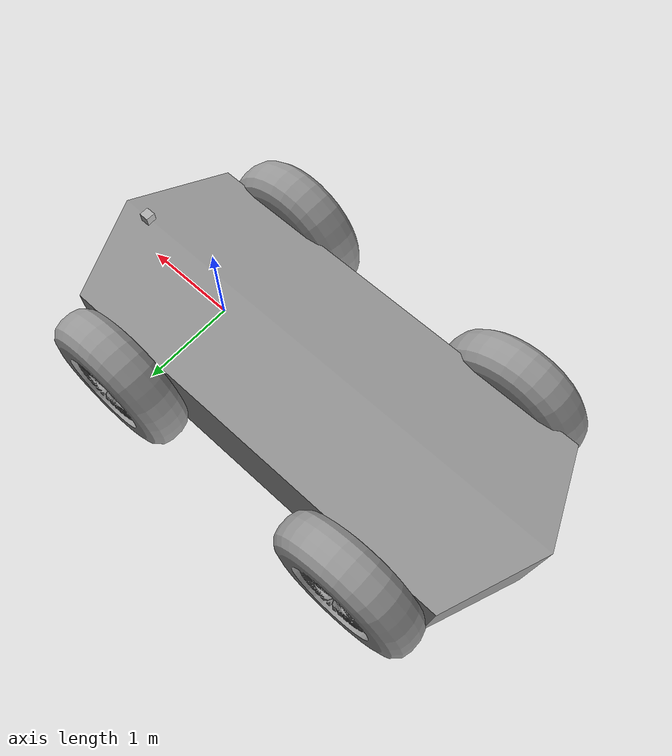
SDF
<?xml version='1.0'?>
<sdf version='1.7'>
  <model name='testrobotfull'>
    <model name='depth_camera'>
      <link name='link'>
        <pose>0 0 0.05 0 -0 0</pose>
        <inertial>
          <mass>0.1</mass>
          <inertia>
            <ixx>0.000166667</ixx>
            <iyy>0.000166667</iyy>
            <izz>0.000166667</izz>
            <ixy>0</ixy>
            <ixz>0</ixz>
            <iyz>0</iyz>
          </inertia>
          <pose>0 0 0 0 -0 0</pose>
        </inertial>
        <collision name='collision'>
          <geometry>
            <box>
              <size>0.1 0.1 0.1</size>
            </box>
          </geometry>
          <max_contacts>10</max_contacts>
          <surface>
            <contact>
              <ode/>
            </contact>
            <bounce/>
            <friction>
              <torsional>
                <ode/>
              </torsional>
              <ode/>
            </friction>
          </surface>
        </collision>
        <visual name='visual'>
          <geometry>
            <box>
              <size>0.1 0.1 0.1</size>
            </box>
          </geometry>
        </visual>
        <sensor name='camera' type='depth'>
          <camera>
            <horizontal_fov>1.047</horizontal_fov>
            <image>
              <width>320</width>
              <height>240</height>
            </image>
            <clip>
              <near>0.1</near>
              <far>100</far>
            </clip>
          </camera>
          <always_on>1</always_on>
          <update_rate>30</update_rate>
          <visualize>1</visualize>
        </sensor>
        <self_collide>0</self_collide>
        <enable_wind>0</enable_wind>
        <kinematic>0</kinematic>
      </link>
      <pose>0.959288 -0.006452 0.650983 0 -0 0</pose>
    </model>
    <model name='testrobot'>
      <link name='link_1'>
        <inertial>
          <mass>1</mass>
          <inertia>
            <ixx>0.166667</ixx>
            <ixy>0</ixy>
            <ixz>0</ixz>
            <iyy>0.166667</iyy>
            <iyz>0</iyz>
            <izz>0.166667</izz>
          </inertia>
          <pose>0 0 0 0 -0 0</pose>
        </inertial>
        <pose>-0.004266 -0.013088 0.006328 1.5809 -0 0</pose>
        <visual name='visual'>
          <pose>0 0 0 0 -0 0</pose>
          <geometry>
            <mesh>
              <uri>/workspaces/2022ROSRobot/robot_parts/robot_question_mark.obj</uri>
              <scale>1 1 1</scale>
            </mesh>
          </geometry>
          <material>
            <lighting>1</lighting>
            <script>
              <uri>file://media/materials/scripts/gazebo.material</uri>
              <name>Gazebo/Grey</name>
            </script>
            <shader type='pixel'/>
          </material>
          <transparency>0</transparency>
          <cast_shadows>1</cast_shadows>
        </visual>
        <collision name='collision'>
          <laser_retro>0</laser_retro>
          <max_contacts>10</max_contacts>
          <pose>0 0 0 0 -0 0</pose>
          <geometry>
            <mesh>
              <uri>/workspaces/2022ROSRobot/robot_parts/robot_question_mark.obj</uri>
              <scale>1 1 1</scale>
            </mesh>
          </geometry>
          <surface>
            <friction>
              <ode>
                <mu>1</mu>
                <mu2>1</mu2>
                <fdir1>0 0 0</fdir1>
                <slip1>0</slip1>
                <slip2>0</slip2>
              </ode>
              <torsional>
                <coefficient>1</coefficient>
                <patch_radius>0</patch_radius>
                <surface_radius>0</surface_radius>
                <use_patch_radius>1</use_patch_radius>
                <ode>
                  <slip>0</slip>
                </ode>
              </torsional>
            </friction>
            <bounce>
              <restitution_coefficient>0</restitution_coefficient>
              <threshold>1e+06</threshold>
            </bounce>
            <contact>
              <collide_without_contact>0</collide_without_contact>
              <collide_without_contact_bitmask>1</collide_without_contact_bitmask>
              <collide_bitmask>1</collide_bitmask>
              <ode>
                <soft_cfm>0</soft_cfm>
                <soft_erp>0.2</soft_erp>
                <kp>1e+13</kp>
                <kd>1</kd>
                <max_vel>0.01</max_vel>
                <min_depth>0</min_depth>
              </ode>
              <bullet>
                <split_impulse>1</split_impulse>
                <split_impulse_penetration_threshold>-0.01</split_impulse_penetration_threshold>
                <soft_cfm>0</soft_cfm>
                <soft_erp>0.2</soft_erp>
                <kp>1e+13</kp>
                <kd>1</kd>
              </bullet>
            </contact>
          </surface>
        </collision>
        <self_collide>0</self_collide>
        <enable_wind>0</enable_wind>
        <kinematic>0</kinematic>
      </link>
      <link name='link_2'>
        <inertial>
          <mass>1</mass>
          <inertia>
            <ixx>0.166667</ixx>
            <ixy>0</ixy>
            <ixz>0</ixz>
            <iyy>0.166667</iyy>
            <iyz>0</iyz>
            <izz>0.166667</izz>
          </inertia>
          <pose>0 0 0 0 -0 0</pose>
        </inertial>
        <pose>-1.44388 -1.18814 -0.001577 1.57113 -0 0</pose>
        <visual name='visual'>
          <pose>0 0 0 0 -0 0</pose>
          <geometry>
            <mesh>
              <uri>/workspaces/2022ROSRobot/robot_parts/robot_wheel.obj</uri>
              <scale>1 1 1</scale>
            </mesh>
          </geometry>
          <material>
            <lighting>1</lighting>
            <script>
              <uri>file://media/materials/scripts/gazebo.material</uri>
              <name>Gazebo/Grey</name>
            </script>
            <shader type='pixel'/>
          </material>
          <transparency>0</transparency>
          <cast_shadows>1</cast_shadows>
        </visual>
        <collision name='collision'>
          <laser_retro>0</laser_retro>
          <max_contacts>10</max_contacts>
          <pose>0 0 0 0 -0 0</pose>
          <geometry>
            <mesh>
              <uri>/workspaces/2022ROSRobot/robot_parts/robot_wheel.obj</uri>
              <scale>1 1 1</scale>
            </mesh>
          </geometry>
          <surface>
            <friction>
              <ode>
                <mu>1</mu>
                <mu2>1</mu2>
                <fdir1>0 0 0</fdir1>
                <slip1>0</slip1>
                <slip2>0</slip2>
              </ode>
              <torsional>
                <coefficient>1</coefficient>
                <patch_radius>0</patch_radius>
                <surface_radius>0</surface_radius>
                <use_patch_radius>1</use_patch_radius>
                <ode>
                  <slip>0</slip>
                </ode>
              </torsional>
            </friction>
            <bounce>
              <restitution_coefficient>0</restitution_coefficient>
              <threshold>1e+06</threshold>
            </bounce>
            <contact>
              <collide_without_contact>0</collide_without_contact>
              <collide_without_contact_bitmask>1</collide_without_contact_bitmask>
              <collide_bitmask>1</collide_bitmask>
              <ode>
                <soft_cfm>0</soft_cfm>
                <soft_erp>0.2</soft_erp>
                <kp>1e+13</kp>
                <kd>1</kd>
                <max_vel>0.01</max_vel>
                <min_depth>0</min_depth>
              </ode>
              <bullet>
                <split_impulse>1</split_impulse>
                <split_impulse_penetration_threshold>-0.01</split_impulse_penetration_threshold>
                <soft_cfm>0</soft_cfm>
                <soft_erp>0.2</soft_erp>
                <kp>1e+13</kp>
                <kd>1</kd>
              </bullet>
            </contact>
          </surface>
        </collision>
        <self_collide>0</self_collide>
        <enable_wind>0</enable_wind>
        <kinematic>0</kinematic>
      </link>
      <link name='link_2_clone'>
        <inertial>
          <mass>1</mass>
          <inertia>
            <ixx>0.166667</ixx>
            <ixy>0</ixy>
            <ixz>0</ixz>
            <iyy>0.166667</iyy>
            <iyz>0</iyz>
            <izz>0.166667</izz>
          </inertia>
          <pose>0 0 0 0 -0 0</pose>
        </inertial>
        <pose>1.41671 -1.21457 -0.001577 1.57113 -0 0</pose>
        <visual name='visual'>
          <pose>0 0 0 0 -0 0</pose>
          <geometry>
            <mesh>
              <uri>/workspaces/2022ROSRobot/robot_parts/robot_wheel.obj</uri>
              <scale>1 1 1</scale>
            </mesh>
          </geometry>
          <material>
            <lighting>1</lighting>
            <script>
              <uri>file://media/materials/scripts/gazebo.material</uri>
              <name>Gazebo/Grey</name>
            </script>
            <shader type='pixel'/>
          </material>
          <transparency>0</transparency>
          <cast_shadows>1</cast_shadows>
        </visual>
        <collision name='collision'>
          <laser_retro>0</laser_retro>
          <max_contacts>10</max_contacts>
          <pose>0 0 0 0 -0 0</pose>
          <geometry>
            <mesh>
              <uri>/workspaces/2022ROSRobot/robot_parts/robot_wheel.obj</uri>
              <scale>1 1 1</scale>
            </mesh>
          </geometry>
          <surface>
            <friction>
              <ode>
                <mu>1</mu>
                <mu2>1</mu2>
                <fdir1>0 0 0</fdir1>
                <slip1>0</slip1>
                <slip2>0</slip2>
              </ode>
              <torsional>
                <coefficient>1</coefficient>
                <patch_radius>0</patch_radius>
                <surface_radius>0</surface_radius>
                <use_patch_radius>1</use_patch_radius>
                <ode>
                  <slip>0</slip>
                </ode>
              </torsional>
            </friction>
            <bounce>
              <restitution_coefficient>0</restitution_coefficient>
              <threshold>1e+06</threshold>
            </bounce>
            <contact>
              <collide_without_contact>0</collide_without_contact>
              <collide_without_contact_bitmask>1</collide_without_contact_bitmask>
              <collide_bitmask>1</collide_bitmask>
              <ode>
                <soft_cfm>0</soft_cfm>
                <soft_erp>0.2</soft_erp>
                <kp>1e+13</kp>
                <kd>1</kd>
                <max_vel>0.01</max_vel>
                <min_depth>0</min_depth>
              </ode>
              <bullet>
                <split_impulse>1</split_impulse>
                <split_impulse_penetration_threshold>-0.01</split_impulse_penetration_threshold>
                <soft_cfm>0</soft_cfm>
                <soft_erp>0.2</soft_erp>
                <kp>1e+13</kp>
                <kd>1</kd>
              </bullet>
            </contact>
          </surface>
        </collision>
        <self_collide>0</self_collide>
        <enable_wind>0</enable_wind>
        <kinematic>0</kinematic>
      </link>
      <link name='link_2_clone_clone'>
        <inertial>
          <mass>1</mass>
          <inertia>
            <ixx>0.166667</ixx>
            <ixy>0</ixy>
            <ixz>0</ixz>
            <iyy>0.166667</iyy>
            <iyz>0</iyz>
            <izz>0.166667</izz>
          </inertia>
          <pose>0 0 0 0 -0 0</pose>
        </inertial>
        <pose>1.493 1.21541 -0.001587 1.57113 -0 0</pose>
        <visual name='visual'>
          <pose>0 0 0 0 -0 0</pose>
          <geometry>
            <mesh>
              <uri>/workspaces/2022ROSRobot/robot_parts/robot_wheel.obj</uri>
              <scale>1 1 1</scale>
            </mesh>
          </geometry>
          <material>
            <lighting>1</lighting>
            <script>
              <uri>file://media/materials/scripts/gazebo.material</uri>
              <name>Gazebo/Grey</name>
            </script>
            <shader type='pixel'/>
          </material>
          <transparency>0</transparency>
          <cast_shadows>1</cast_shadows>
        </visual>
        <collision name='collision'>
          <laser_retro>0</laser_retro>
          <max_contacts>10</max_contacts>
          <pose>0 0 0 0 -0 0</pose>
          <geometry>
            <mesh>
              <uri>/workspaces/2022ROSRobot/robot_parts/robot_wheel.obj</uri>
              <scale>1 1 1</scale>
            </mesh>
          </geometry>
          <surface>
            <friction>
              <ode>
                <mu>1</mu>
                <mu2>1</mu2>
                <fdir1>0 0 0</fdir1>
                <slip1>0</slip1>
                <slip2>0</slip2>
              </ode>
              <torsional>
                <coefficient>1</coefficient>
                <patch_radius>0</patch_radius>
                <surface_radius>0</surface_radius>
                <use_patch_radius>1</use_patch_radius>
                <ode>
                  <slip>0</slip>
                </ode>
              </torsional>
            </friction>
            <bounce>
              <restitution_coefficient>0</restitution_coefficient>
              <threshold>1e+06</threshold>
            </bounce>
            <contact>
              <collide_without_contact>0</collide_without_contact>
              <collide_without_contact_bitmask>1</collide_without_contact_bitmask>
              <collide_bitmask>1</collide_bitmask>
              <ode>
                <soft_cfm>0</soft_cfm>
                <soft_erp>0.2</soft_erp>
                <kp>1e+13</kp>
                <kd>1</kd>
                <max_vel>0.01</max_vel>
                <min_depth>0</min_depth>
              </ode>
              <bullet>
                <split_impulse>1</split_impulse>
                <split_impulse_penetration_threshold>-0.01</split_impulse_penetration_threshold>
                <soft_cfm>0</soft_cfm>
                <soft_erp>0.2</soft_erp>
                <kp>1e+13</kp>
                <kd>1</kd>
              </bullet>
            </contact>
          </surface>
        </collision>
        <self_collide>0</self_collide>
        <enable_wind>0</enable_wind>
        <kinematic>0</kinematic>
      </link>
      <link name='link_2_clone_clone_clone'>
        <inertial>
          <mass>1</mass>
          <inertia>
            <ixx>0.166667</ixx>
            <ixy>0</ixy>
            <ixz>0</ixz>
            <iyy>0.166667</iyy>
            <iyz>0</iyz>
            <izz>0.166667</izz>
          </inertia>
          <pose>0 0 0 0 -0 0</pose>
        </inertial>
        <pose>-1.46157 1.2004 -0.001587 1.57113 -0 0</pose>
        <visual name='visual'>
          <pose>0 0 0 0 -0 0</pose>
          <geometry>
            <mesh>
              <uri>/workspaces/2022ROSRobot/robot_parts/robot_wheel.obj</uri>
              <scale>1 1 1</scale>
            </mesh>
          </geometry>
          <material>
            <lighting>1</lighting>
            <script>
              <uri>file://media/materials/scripts/gazebo.material</uri>
              <name>Gazebo/Grey</name>
            </script>
            <shader type='pixel'/>
          </material>
          <transparency>0</transparency>
          <cast_shadows>1</cast_shadows>
        </visual>
        <collision name='collision'>
          <laser_retro>0</laser_retro>
          <max_contacts>10</max_contacts>
          <pose>0 0 0 0 -0 0</pose>
          <geometry>
            <mesh>
              <uri>/workspaces/2022ROSRobot/robot_parts/robot_wheel.obj</uri>
              <scale>1 1 1</scale>
            </mesh>
          </geometry>
          <surface>
            <friction>
              <ode>
                <mu>1</mu>
                <mu2>1</mu2>
                <fdir1>0 0 0</fdir1>
                <slip1>0</slip1>
                <slip2>0</slip2>
              </ode>
              <torsional>
                <coefficient>1</coefficient>
                <patch_radius>0</patch_radius>
                <surface_radius>0</surface_radius>
                <use_patch_radius>1</use_patch_radius>
                <ode>
                  <slip>0</slip>
                </ode>
              </torsional>
            </friction>
            <bounce>
              <restitution_coefficient>0</restitution_coefficient>
              <threshold>1e+06</threshold>
            </bounce>
            <contact>
              <collide_without_contact>0</collide_without_contact>
              <collide_without_contact_bitmask>1</collide_without_contact_bitmask>
              <collide_bitmask>1</collide_bitmask>
              <ode>
                <soft_cfm>0</soft_cfm>
                <soft_erp>0.2</soft_erp>
                <kp>1e+13</kp>
                <kd>1</kd>
                <max_vel>0.01</max_vel>
                <min_depth>0</min_depth>
              </ode>
              <bullet>
                <split_impulse>1</split_impulse>
                <split_impulse_penetration_threshold>-0.01</split_impulse_penetration_threshold>
                <soft_cfm>0</soft_cfm>
                <soft_erp>0.2</soft_erp>
                <kp>1e+13</kp>
                <kd>1</kd>
              </bullet>
            </contact>
          </surface>
        </collision>
        <self_collide>0</self_collide>
        <enable_wind>0</enable_wind>
        <kinematic>0</kinematic>
      </link>
      <static>0</static>
      <allow_auto_disable>1</allow_auto_disable>
      <pose>-1.3028 0.006452 0.042296 0 -0 0</pose>
    </model>
    <joint name='link_1_JOINT_0' type='revolute'>
      <parent>testrobot::link_1</parent>
      <child>testrobot::link_2_clone_clone</child>
      <pose>0 0 0 0 -0 0</pose>
      <axis>
        <xyz>0 0 1</xyz>
        <limit>
          <lower>-1.79769e+308</lower>
          <upper>1.79769e+308</upper>
          <effort>-1</effort>
          <velocity>-1</velocity>
        </limit>
        <dynamics>
          <spring_reference>0</spring_reference>
          <spring_stiffness>0</spring_stiffness>
          <damping>0</damping>
          <friction>0</friction>
        </dynamics>
      </axis>
      <physics>
        <ode>
          <limit>
            <cfm>0</cfm>
            <erp>0.2</erp>
          </limit>
          <suspension>
            <cfm>0</cfm>
            <erp>0.2</erp>
          </suspension>
        </ode>
      </physics>
    </joint>
    <joint name='link_1_JOINT_1' type='revolute'>
      <parent>testrobot::link_1</parent>
      <child>testrobot::link_2_clone_clone_clone</child>
      <pose>0 0 0 0 -0 0</pose>
      <axis>
        <xyz>0 0 1</xyz>
        <limit>
          <lower>-1.79769e+308</lower>
          <upper>1.79769e+308</upper>
          <effort>-1</effort>
          <velocity>-1</velocity>
        </limit>
        <dynamics>
          <spring_reference>0</spring_reference>
          <spring_stiffness>0</spring_stiffness>
          <damping>0</damping>
          <friction>0</friction>
        </dynamics>
      </axis>
      <physics>
        <ode>
          <limit>
            <cfm>0</cfm>
            <erp>0.2</erp>
          </limit>
          <suspension>
            <cfm>0</cfm>
            <erp>0.2</erp>
          </suspension>
        </ode>
      </physics>
    </joint>
    <joint name='link_1_JOINT_2' type='revolute'>
      <parent>testrobot::link_1</parent>
      <child>testrobot::link_2_clone</child>
      <pose>0 0 0 0 -0 0</pose>
      <axis>
        <xyz>0 0 1</xyz>
        <limit>
          <lower>-1.79769e+308</lower>
          <upper>1.79769e+308</upper>
          <effort>-1</effort>
          <velocity>-1</velocity>
        </limit>
        <dynamics>
          <spring_reference>0</spring_reference>
          <spring_stiffness>0</spring_stiffness>
          <damping>0</damping>
          <friction>0</friction>
        </dynamics>
      </axis>
      <physics>
        <ode>
          <limit>
            <cfm>0</cfm>
            <erp>0.2</erp>
          </limit>
          <suspension>
            <cfm>0</cfm>
            <erp>0.2</erp>
          </suspension>
        </ode>
      </physics>
    </joint>
    <joint name='link_1_JOINT_3' type='revolute'>
      <parent>testrobot::link_1</parent>
      <child>testrobot::link_2</child>
      <pose>0 0 0 0 -0 0</pose>
      <axis>
        <xyz>0 0 1</xyz>
        <limit>
          <lower>-1.79769e+308</lower>
          <upper>1.79769e+308</upper>
          <effort>-1</effort>
          <velocity>-1</velocity>
        </limit>
        <dynamics>
          <spring_reference>0</spring_reference>
          <spring_stiffness>0</spring_stiffness>
          <damping>0</damping>
          <friction>0</friction>
        </dynamics>
      </axis>
      <physics>
        <ode>
          <limit>
            <cfm>0</cfm>
            <erp>0.2</erp>
          </limit>
          <suspension>
            <cfm>0</cfm>
            <erp>0.2</erp>
          </suspension>
        </ode>
      </physics>
    </joint>
    <joint name='link_1_JOINT_4' type='fixed'>
      <parent>testrobot::link_1</parent>
      <child>depth_camera::link</child>
      <pose>0 0 0 0 -0 0</pose>
      <physics>
        <ode>
          <limit>
            <cfm>0</cfm>
            <erp>0.2</erp>
          </limit>
          <suspension>
            <cfm>0</cfm>
            <erp>0.2</erp>
          </suspension>
        </ode>
      </physics>
    </joint>
    <static>0</static>
    <allow_auto_disable>1</allow_auto_disable>
    <plugin name='follower' filename='libFollowerPlugin.so'/>
  </model>
</sdf>
